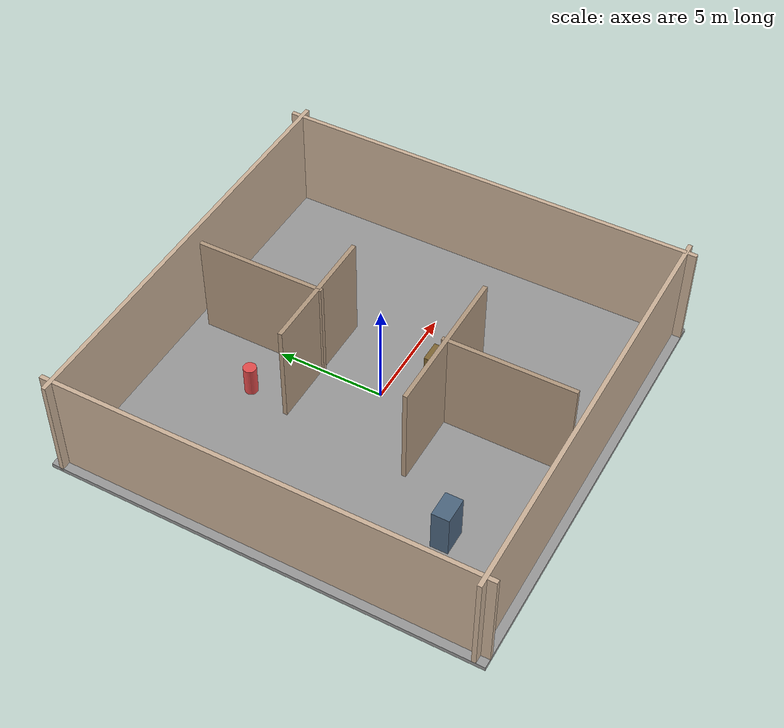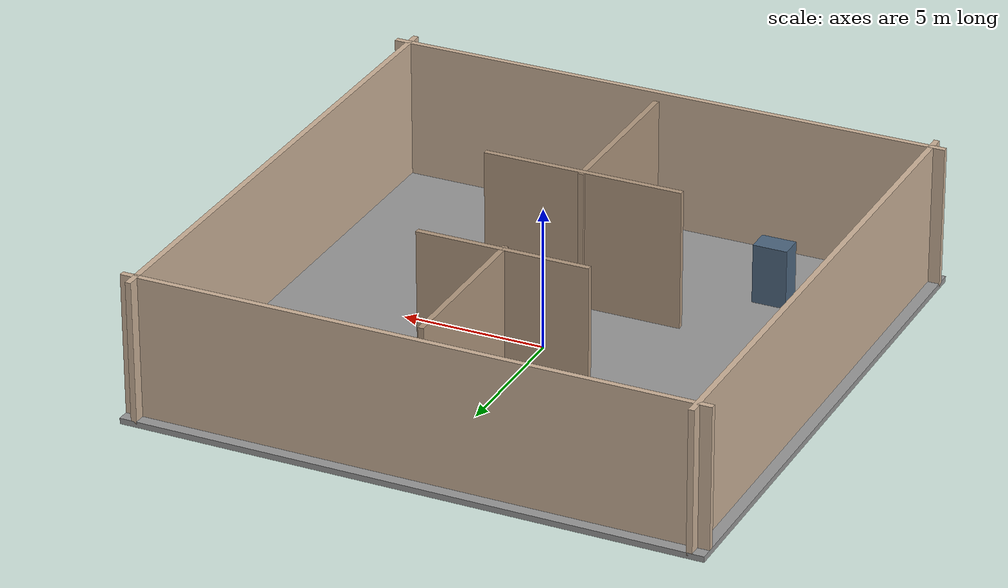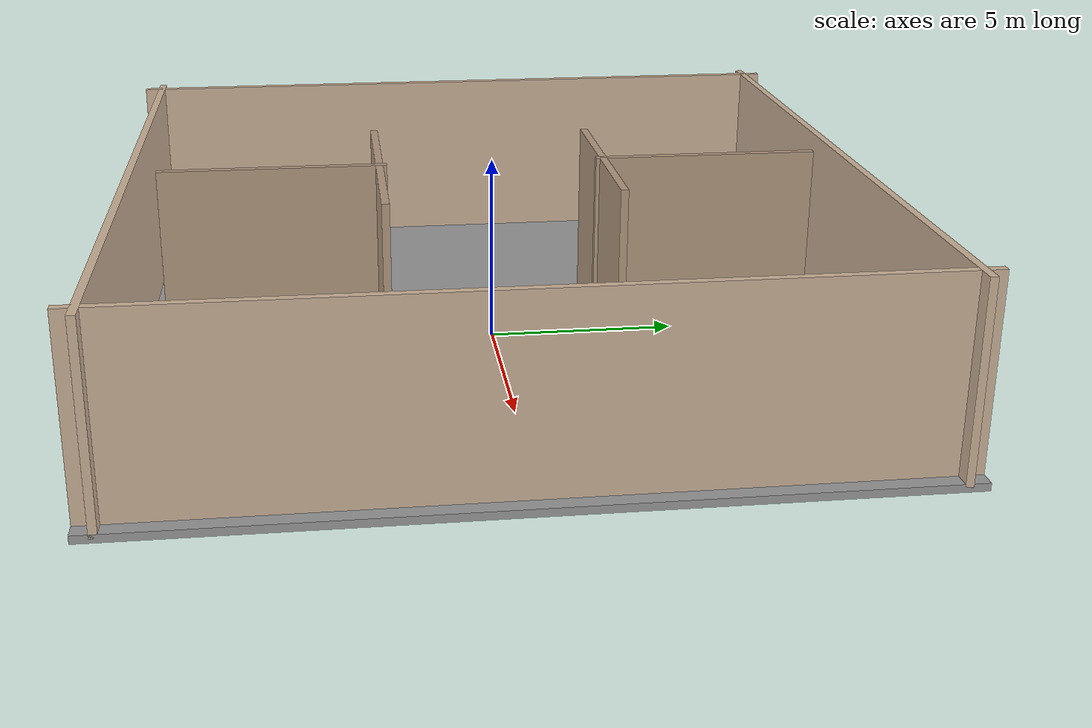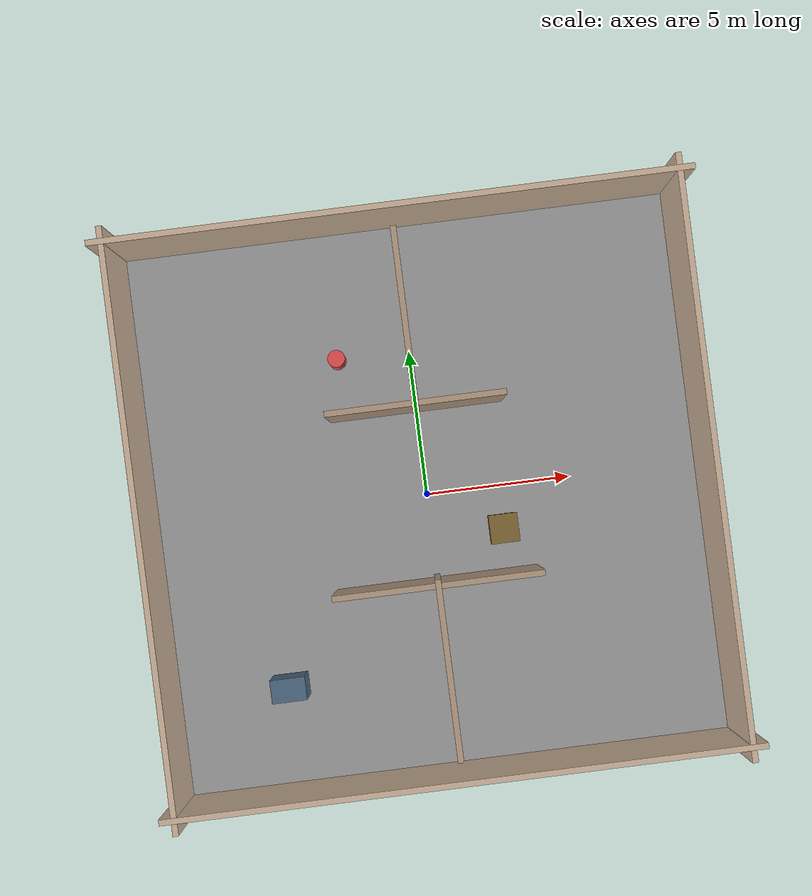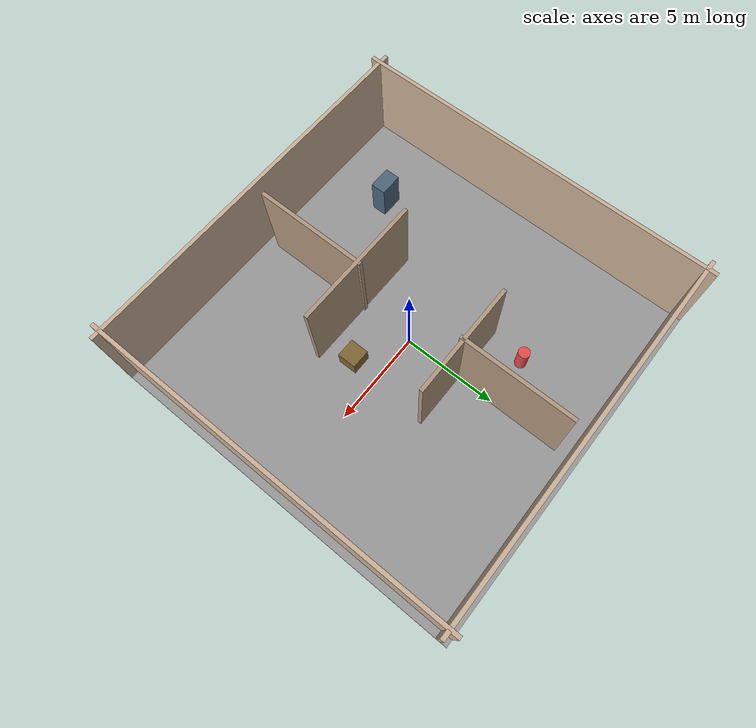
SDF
<?xml version="1.0" encoding="UTF-8"?>
<sdf version="1.9">
  <world name="room">

    <physics type="ode">
      <max_step_size>0.004</max_step_size>
      <real_time_factor>1.0</real_time_factor>
      <real_time_update_rate>250</real_time_update_rate>
    </physics>
    <plugin name="gz::sim::systems::Physics" filename="gz-sim-physics-system"/>
    <plugin name="gz::sim::systems::UserCommands" filename="gz-sim-user-commands-system"/>
    <plugin name="gz::sim::systems::SceneBroadcaster" filename="gz-sim-scene-broadcaster-system"/>
    <plugin name="gz::sim::systems::Contact" filename="gz-sim-contact-system"/>
    <plugin name="gz::sim::systems::Imu" filename="gz-sim-imu-system"/>
    <plugin name="gz::sim::systems::AirPressure" filename="gz-sim-air-pressure-system"/>
    <plugin name="gz::sim::systems::ApplyLinkWrench" filename="gz-sim-apply-link-wrench-system"/>
    <plugin name="gz::sim::systems::NavSat" filename="gz-sim-navsat-system"/>
    <plugin name="gz::sim::systems::Sensors" filename="gz-sim-sensors-system">
      <render_engine>ogre2</render_engine>
    </plugin>
    <gui fullscreen="false">
      <!-- 3D scene -->
      <plugin filename="MinimalScene" name="3D View">
        <gz-gui>
          <title>3D View</title>
          <property type="bool" key="showTitleBar">false</property>
          <property type="string" key="state">docked</property>
        </gz-gui>
        <engine>ogre2</engine>
        <scene>gui_scene</scene>
        <ambient_light>0.4 0.4 0.4</ambient_light>
        <background_color>0.8 0.8 0.8</background_color>
        <camera_pose>-6 0 6 0 0.5 0</camera_pose>
        <camera_clip>
          <near>0.25</near>
          <far>25000</far>
        </camera_clip>
      </plugin>
      <!-- Plugins that add functionality to the scene -->
      <plugin filename="EntityContextMenuPlugin" name="Entity context menu">
        <gz-gui>
          <property key="state" type="string">floating</property>
          <property key="width" type="double">5</property>
          <property key="height" type="double">5</property>
          <property key="showTitleBar" type="bool">false</property>
        </gz-gui>
      </plugin>
      <plugin filename="GzSceneManager" name="Scene Manager">
        <gz-gui>
          <property key="resizable" type="bool">false</property>
          <property key="width" type="double">5</property>
          <property key="height" type="double">5</property>
          <property key="state" type="string">floating</property>
          <property key="showTitleBar" type="bool">false</property>
        </gz-gui>
      </plugin>
      <plugin filename="InteractiveViewControl" name="Interactive view control">
        <gz-gui>
          <property key="resizable" type="bool">false</property>
          <property key="width" type="double">5</property>
          <property key="height" type="double">5</property>
          <property key="state" type="string">floating</property>
          <property key="showTitleBar" type="bool">false</property>
        </gz-gui>
      </plugin>
      <plugin filename="CameraTracking" name="Camera Tracking">
        <gz-gui>
          <property key="resizable" type="bool">false</property>
          <property key="width" type="double">5</property>
          <property key="height" type="double">5</property>
          <property key="state" type="string">floating</property>
          <property key="showTitleBar" type="bool">false</property>
        </gz-gui>
      </plugin>
      <plugin filename="MarkerManager" name="Marker manager">
        <gz-gui>
          <property key="resizable" type="bool">false</property>
          <property key="width" type="double">5</property>
          <property key="height" type="double">5</property>
          <property key="state" type="string">floating</property>
          <property key="showTitleBar" type="bool">false</property>
        </gz-gui>
      </plugin>
      <plugin filename="SelectEntities" name="Select Entities">
        <gz-gui>
          <anchors target="Select entities">
            <line own="right" target="right"/>
            <line own="top" target="top"/>
          </anchors>
          <property key="resizable" type="bool">false</property>
          <property key="width" type="double">5</property>
          <property key="height" type="double">5</property>
          <property key="state" type="string">floating</property>
          <property key="showTitleBar" type="bool">false</property>
        </gz-gui>
      </plugin>
      <plugin filename="VisualizationCapabilities" name="Visualization Capabilities">
        <gz-gui>
          <property key="resizable" type="bool">false</property>
          <property key="width" type="double">5</property>
          <property key="height" type="double">5</property>
          <property key="state" type="string">floating</property>
          <property key="showTitleBar" type="bool">false</property>
        </gz-gui>
      </plugin>
      <plugin filename="Spawn" name="Spawn Entities">
        <gz-gui>
          <anchors target="Select entities">
            <line own="right" target="right"/>
            <line own="top" target="top"/>
          </anchors>
          <property key="resizable" type="bool">false</property>
          <property key="width" type="double">5</property>
          <property key="height" type="double">5</property>
          <property key="state" type="string">floating</property>
          <property key="showTitleBar" type="bool">false</property>
        </gz-gui>
      </plugin>
      <plugin name="World control" filename="WorldControl">
        <gz-gui>
          <title>World control</title>
          <property type="bool" key="showTitleBar">0</property>
          <property type="bool" key="resizable">0</property>
          <property type="double" key="height">72</property>
          <property type="double" key="width">121</property>
          <property type="double" key="z">1</property>
          <property type="string" key="state">floating</property>
          <anchors target="3D View">
            <line own="left" target="left"/>
            <line own="bottom" target="bottom"/>
          </anchors>
        </gz-gui>
        <play_pause>1</play_pause>
        <step>1</step>
        <start_paused>1</start_paused>
      </plugin>
      <plugin name="World stats" filename="WorldStats">
        <gz-gui>
          <title>World stats</title>
          <property type="bool" key="showTitleBar">0</property>
          <property type="bool" key="resizable">0</property>
          <property type="double" key="height">110</property>
          <property type="double" key="width">290</property>
          <property type="double" key="z">1</property>
          <property type="string" key="state">floating</property>
          <anchors target="3D View">
            <line own="right" target="right"/>
            <line own="bottom" target="bottom"/>
          </anchors>
        </gz-gui>
        <sim_time>1</sim_time>
        <real_time>1</real_time>
        <real_time_factor>1</real_time_factor>
        <iterations>1</iterations>
      </plugin>
      <plugin name="Entity tree" filename="EntityTree"/>
    </gui>
    <gravity>0 0 -9.8</gravity>
    <magnetic_field>6e-06 2.3e-05 -4.2e-05</magnetic_field>
    <atmosphere type="adiabatic"/>
    <scene>
      <grid>false</grid>
      <ambient>0.4 0.4 0.4 1</ambient>
      <background>0.7 0.7 0.7 1</background>
      <shadows>true</shadows>
    </scene>

    <!-- 地面：一个大的平面盒子，作为所有房间的基底 -->
    <model name="ground_floor">
      <static>true</static>
      <link name="floor_link">
        <visual name="floor_visual">
          <geometry>
            <box>
              <size>20 20 0.2</size> <!-- 面积20x20米，厚度0.2米 -->
            </box>
          </geometry>
          <material>
            <ambient>0.5 0.5 0.5 1</ambient>
            <diffuse>0.6 0.6 0.6 1</diffuse>
            <specular>0.1 0.1 0.1 1</specular>
          </material>
        </visual>
        <collision name="floor_collision">
          <geometry>
            <box>
              <size>20 20 0.2</size>
            </box>
          </geometry>
        </collision>
      </link>
    </model>

    <!-- ================= 外墙 ================= -->
    <!-- 北墙 (位于世界坐标 Y = 9.5 处，沿X轴方向) -->
    <model name="outer_wall_north">
      <static>true</static>
      <pose>0 9.5 2.5 0 0 0</pose>
      <link name="wall_link">
        <visual name="wall_visual">
          <geometry>
            <box>
              <size>20 0.2 5.0</size>
            </box>
          </geometry>
          <material>
            <ambient>0.7 0.6 0.5 1</ambient>
            <diffuse>0.8 0.7 0.6 1</diffuse>
          </material>
        </visual>
        <collision name="wall_collision">
          <geometry>
            <box>
              <size>20 0.2 5.0</size>
            </box>
          </geometry>
        </collision>
      </link>
    </model>

    <!-- 南墙 (Y = -9.5) -->
    <model name="outer_wall_south">
      <static>true</static>
      <pose>0 -9.5 2.5 0 0 0</pose>
      <link name="wall_link">
        <visual name="wall_visual">
          <geometry>
            <box>
              <size>20 0.2 5.0</size>
            </box>
          </geometry>
          <material>
            <ambient>0.7 0.6 0.5 1</ambient>
            <diffuse>0.8 0.7 0.6 1</diffuse>
          </material>
        </visual>
        <collision name="wall_collision">
          <geometry>
            <box>
              <size>20 0.2 5.0</size>
            </box>
          </geometry>
        </collision>
      </link>
    </model>

    <!-- 东墙 (X = 9.5) -->
    <model name="outer_wall_east">
      <static>true</static>
      <pose>9.5 0 2.5 0 0 0</pose>
      <link name="wall_link">
        <visual name="wall_visual">
          <geometry>
            <box>
              <size>0.2 20 5.0</size>
            </box>
          </geometry>
          <material>
            <ambient>0.7 0.6 0.5 1</ambient>
            <diffuse>0.8 0.7 0.6 1</diffuse>
          </material>
        </visual>
        <collision name="wall_collision">
          <geometry>
            <box>
              <size>0.2 20 5.0</size>
            </box>
          </geometry>
        </collision>
      </link>
    </model>

    <!-- 西墙 (X = -9.5) -->
    <model name="outer_wall_west">
      <static>true</static>
      <pose>-9.5 0 2.5 0 0 0</pose>
      <link name="wall_link">
        <visual name="wall_visual">
          <geometry>
            <box>
              <size>0.2 20 5.0</size>
            </box>
          </geometry>
          <material>
            <ambient>0.7 0.6 0.5 1</ambient>
            <diffuse>0.8 0.7 0.6 1</diffuse>
          </material>
        </visual>
        <collision name="wall_collision">
          <geometry>
            <box>
              <size>0.2 20 5.0</size>
            </box>
          </geometry>
        </collision>
      </link>
    </model>

    <!-- ================= 内部隔墙 ================= -->
    <!-- 隔墙1：将空间分为左右两大区域（南北走向，位于X=0处，带门洞）
         实际做成两段墙：一段在Y正半区，一段在Y负半区，中间留门 -->
    <!-- 北段内墙 (Y: 0.5 到 9.0) -->
    <model name="inner_wall_center_north">
      <static>true</static>
      <pose>0 5.8 2.5 0 0 0</pose>
      <link name="wall_link">
        <visual name="wall_visual">
          <geometry>
            <box>
              <size>0.2 6.0 5.0</size>
            </box>
          </geometry>
          <material>
            <ambient>0.6 0.5 0.4 1</ambient>
            <diffuse>0.7 0.6 0.5 1</diffuse>
          </material>
        </visual>
        <collision name="wall_collision">
          <geometry>
            <box>
              <size>0.2 6.0 5.0</size>
            </box>
          </geometry>
        </collision>
      </link>
    </model>

    <!-- 南段内墙 (Y: -9.0 到 -0.5) -->
    <model name="inner_wall_center_south">
      <static>true</static>
      <pose>0 -5.8 2.5 0 0 0</pose>
      <link name="wall_link">
        <visual name="wall_visual">
          <geometry>
            <box>
              <size>0.2 6.0 5.0</size>
            </box>
          </geometry>
          <material>
            <ambient>0.6 0.5 0.4 1</ambient>
            <diffuse>0.7 0.6 0.5 1</diffuse>
          </material>
        </visual>
        <collision name="wall_collision">
          <geometry>
            <box>
              <size>0.2 6.0 5.0</size>
            </box>
          </geometry>
        </collision>
      </link>
    </model>

    <!-- 隔墙2：横向分割上半区域，形成两个小房间 (位于Y=2.5, X从 -3 到 3) 带门洞方式：左右两段 -->
    <model name="inner_wall_horizontal_left">
      <static>true</static>
      <pose>-1.5 3.0 2.5 0 0 0</pose>
      <link name="wall_link">
        <visual name="wall_visual">
          <geometry>
            <box>
              <size>3.0 0.2 5.0</size>
            </box>
          </geometry>
          <material>
            <ambient>0.6 0.5 0.4 1</ambient>
            <diffuse>0.7 0.6 0.5 1</diffuse>
          </material>
        </visual>
        <collision name="wall_collision">
          <geometry>
            <box>
              <size>3.0 0.2 5.0</size>
            </box>
          </geometry>
        </collision>
      </link>
    </model>

    <model name="inner_wall_horizontal_right">
      <static>true</static>
      <pose>1.5 3.0 2.5 0 0 0</pose>
      <link name="wall_link">
        <visual name="wall_visual">
          <geometry>
            <box>
              <size>3.0 0.2 5.0</size>
            </box>
          </geometry>
          <material>
            <ambient>0.6 0.5 0.4 1</ambient>
            <diffuse>0.7 0.6 0.5 1</diffuse>
          </material>
        </visual>
        <collision name="wall_collision">
          <geometry>
            <box>
              <size>3.0 0.2 5.0</size>
            </box>
          </geometry>
        </collision>
      </link>
    </model>

    <!-- 隔墙3：另一条横向分割，位于下半区域 Y = -3.0 处 -->
    <model name="inner_wall_lower">
      <static>true</static>
      <pose>0 -3.0 2.5 0 0 0</pose>
      <link name="wall_link">
        <visual name="wall_visual">
          <geometry>
            <box>
              <size>7.0 0.2 5.0</size>
            </box>
          </geometry>
          <material>
            <ambient>0.6 0.5 0.4 1</ambient>
            <diffuse>0.7 0.6 0.5 1</diffuse>
          </material>
        </visual>
        <collision name="wall_collision">
          <geometry>
            <box>
              <size>7.0 0.2 5.0</size>
            </box>
          </geometry>
        </collision>
      </link>
    </model>

    <!-- 可选：增加一个小方块作为房间内的桌子或障碍物示例，并非墙，但增加真实感 -->
    <model name="table_example">
      <static>true</static>
      <pose>2.5 -1.5 0.5 0 0 0</pose>
      <link name="table_link">
        <visual name="table_visual">
          <geometry>
            <box>
              <size>1.0 1.0 1.0</size>
            </box>
          </geometry>
          <material>
            <ambient>0.3 0.2 0.1 1</ambient>
            <diffuse>0.5 0.4 0.2 1</diffuse>
          </material>
        </visual>
        <collision name="table_collision">
          <geometry>
            <box>
              <size>1.0 1.0 1.0</size>
            </box>
          </geometry>
        </collision>
      </link>
    </model>

    <!-- 另一个装饰性障碍物，圆柱体，模拟柱子 -->
    <model name="pillar">
      <static>true</static>
      <pose>-2.5 5.0 0.75 0 0 0</pose>
      <link name="pillar_link">
        <visual name="pillar_visual">
          <geometry>
            <cylinder>
              <radius>0.3</radius>
              <length>1.5</length>
            </cylinder>
          </geometry>
          <material>
            <ambient>0.8 0.2 0.2 1</ambient>
            <diffuse>0.9 0.3 0.3 1</diffuse>
          </material>
        </visual>
        <collision name="pillar_collision">
          <geometry>
            <cylinder>
              <radius>0.25</radius>
              <length>1.5</length>
            </cylinder>
          </geometry>
        </collision>
      </link>
    </model>

    <!-- ================= 家具/点缀 (简单形状) ================= -->
    <!-- 在左下角房间放一个柜子形状 -->
    <model name="cabinet">
      <static>true</static>
      <pose>-5.5 -6.0 1.1 0 0 0</pose>
      <link name="cabinet_link">
        <visual name="cabinet_visual">
          <geometry>
            <box>
              <size>1.2 0.8 2.2</size>
            </box>
          </geometry>
          <material>
            <ambient>0.2 0.3 0.4 1</ambient>
            <diffuse>0.3 0.4 0.5 1</diffuse>
          </material>
        </visual>
        <collision name="cabinet_collision">
          <geometry>
            <box>
              <size>1.2 0.8 2.2</size>
            </box>
          </geometry>
        </collision>
      </link>
    </model>

    <!-- ================= 可选：标记房间区域 (可视化辅助) ================= -->
    <!-- 在地面上添加不同颜色的半透明区域来标示房间，不影响物理 -->
    <model name="room_marker_1">
      <static>true</static>
      <pose>-4.5 6.5 0.05 0 0 0</pose>
      <link name="marker_link">
        <visual name="marker_visual">
          <geometry>
            <box>
              <size>5.0 5.0 0.01</size>
            </box>
          </geometry>
          <material>
            <ambient>0.3 0.6 0.8 0.4</ambient>
            <diffuse>0.3 0.6 0.8 0.4</diffuse>
          </material>
        </visual>
      </link>
    </model>

    <model name="room_marker_2">
      <static>true</static>
      <pose>4.5 6.5 0.05 0 0 0</pose>
      <link name="marker_link">
        <visual name="marker_visual">
          <geometry>
            <box>
              <size>5.0 5.0 0.01</size>
            </box>
          </geometry>
          <material>
            <ambient>0.3 0.6 0.8 0.4</ambient>
            <diffuse>0.3 0.6 0.8 0.4</diffuse>
          </material>
        </visual>
      </link>
    </model>

    <light name="sunUTC" type="directional">
      <pose>0 0 500 0 -0 0</pose>
      <cast_shadows>true</cast_shadows>
      <intensity>1</intensity>
      <direction>0.001 0.625 -0.78</direction>
      <diffuse>0.904 0.904 0.904 1</diffuse>
      <specular>0.271 0.271 0.271 1</specular>
      <attenuation>
        <range>2000</range>
        <linear>0</linear>
        <constant>1</constant>
        <quadratic>0</quadratic>
      </attenuation>
      <spot>
        <inner_angle>0</inner_angle>
        <outer_angle>0</outer_angle>
        <falloff>0</falloff>
      </spot>
    </light>
    <spherical_coordinates>
      <surface_model>EARTH_WGS84</surface_model>
      <world_frame_orientation>ENU</world_frame_orientation>
      <latitude_deg>47.397971057728974</latitude_deg>
      <longitude_deg> 8.546163739800146</longitude_deg>
      <elevation>0</elevation>
    </spherical_coordinates>

  </world>
</sdf>
